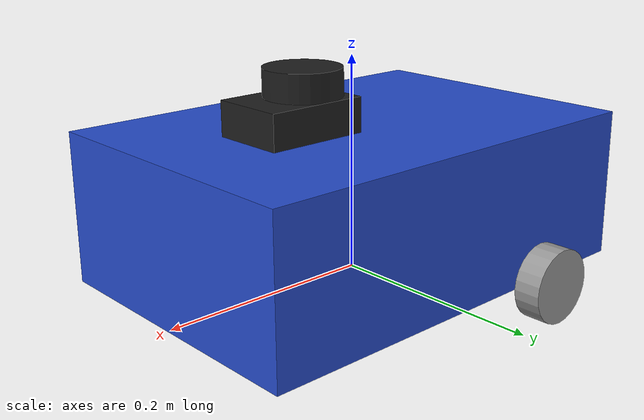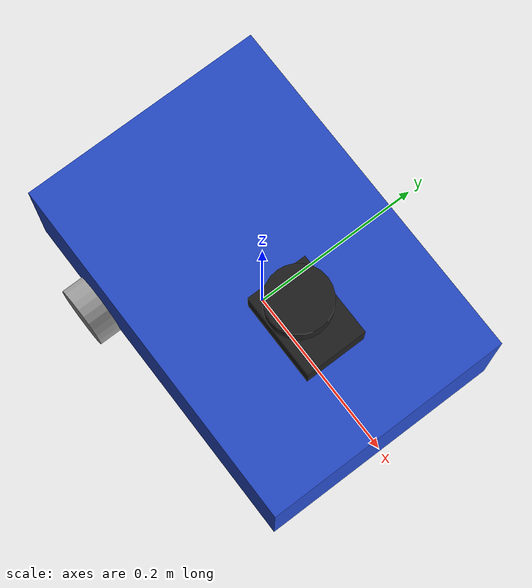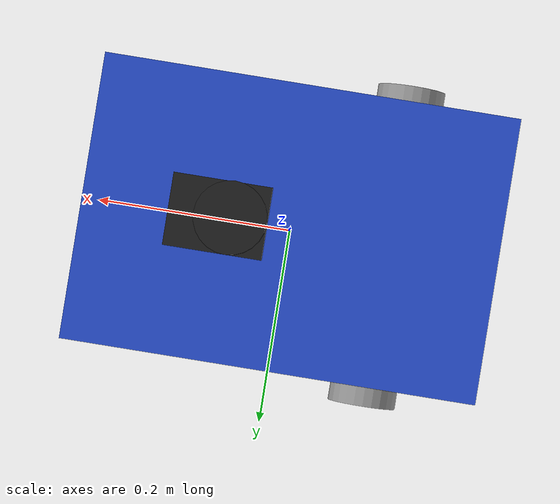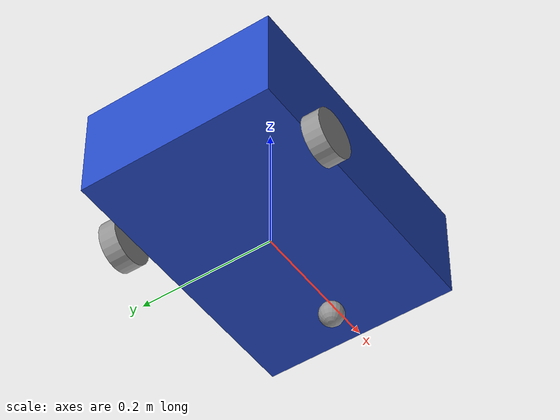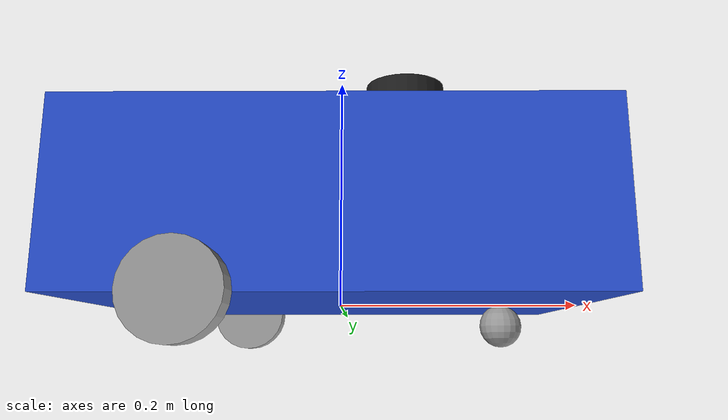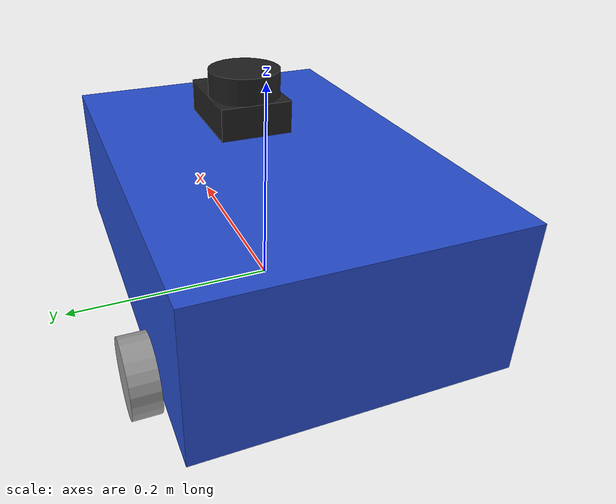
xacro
<?xml version="1.0"?>
<robot name="my_robot" xmlns:xacro="http://www.ros.org/wiki/xacro">
    <xacro:property name="base_length" value="0.4064" />
    <xacro:property name="base_width" value="0.2794" />
    <xacro:property name="base_height" value="0.1397" />
    <xacro:property name="base_mass" value="1.4" />
    <xacro:property name="wheel_radius" value="0.034925" />
    <xacro:property name="wheel_length" value="0.0254" />
    <xacro:property name="wheel_mass" value="0.03" />
    <xacro:property name="lidar_stand_length" value="0.09525" />
    <xacro:property name="lidar_stand_width" value="0.06985" />
    <xacro:property name="lidar_stand_height" value="0.03175" />
    <xacro:property name="lidar_stand_mass" value="0.06" />
    <xacro:property name="lidar_length" value="0.0254" />
    <xacro:property name="lidar_radius" value="0.034925" />
    <xacro:property name="lidar_mass" value="0.12" />
    <xacro:property name="caster_mass" value="0.04" />

    <!--XARCROs FOR ARTICUBOT-->
    <xacro:macro name="lidar_stand_link">
        <link name="lidar_stand_link">
            <visual>
                <geometry>
                    <box size="${lidar_stand_length} ${lidar_stand_width} ${lidar_stand_height}" />
                </geometry>
                <origin xyz="0 0 ${lidar_stand_height/2.0}" rpy="0 0 0" />
                <material name="black" />
            </visual>
            <collision>
                <geometry>
                    <box size="${lidar_stand_length} ${lidar_stand_width} ${lidar_stand_height}" />
                </geometry>
                <origin xyz="0 0 ${lidar_stand_height/2.0}" rpy="0 0 0" />
            </collision>
            <xacro:box_inertia m="${lidar_stand_mass}" l="${lidar_stand_length}" w="${lidar_stand_width}" h="${lidar_stand_height}"
                           xyz="0 0 ${lidar_stand_height / 2.0}" rpy="0 0 0" />
        </link>
    </xacro:macro>

    <xacro:macro name="lidar_link">
        <link name="lidar_link">
            <visual>
                <geometry>
                    <cylinder radius="${lidar_radius}" length="${lidar_length}" />
                </geometry>
                <origin xyz="0 0 ${lidar_length/2.0}" rpy="0 0 0" />
                <material name="black" />
            </visual>
            <collision>
                <geometry>
                    <cylinder radius="${lidar_radius}" length="${lidar_length}" />
                </geometry>
                <origin xyz="0 0 ${lidar_length/2.0}" rpy="0 0 0" />
            </collision>
            <xacro:cylinder_inertia m="${lidar_mass}" r="${lidar_radius}" h="${lidar_length}"
                             xyz="0 0 0" rpy="0 0 0" />
        </link>
    </xacro:macro>

    <xacro:macro name="wheel_link" params="prefix">
        <link name="${prefix}_wheel_link">
            <visual>
                <geometry>
                    <cylinder radius="${wheel_radius}" length="${wheel_length}" />
                </geometry>
                <origin xyz="0 0 0" rpy="${pi / 2.0} 0 0" />
                <material name="grey" />
            </visual>
            <collision>
                <geometry>
                    <cylinder radius="${wheel_radius}" length="${wheel_length}" />
                </geometry>
                <origin xyz="0 0 0" rpy="${pi / 2.0} 0 0" />
            </collision>
            <xacro:cylinder_inertia m="${wheel_mass}" r="${wheel_radius}" h="${wheel_length}"
                             xyz="0 0 0" rpy="${pi / 2.0} 0 0" />
        </link>
    </xacro:macro>

    <xacro:macro name="chassis">
        <link name="chassis">
            <visual>
                <geometry>
                    <box size="${base_length} ${base_width} ${base_height}" />
                </geometry>
                <origin xyz="0 0 ${base_height/2.0}" rpy="0 0 0" />
                <material name="blue" />
            </visual>
            <collision>
                <geometry>
                    <box size="${base_length} ${base_width} ${base_height}" />
                </geometry>
                <origin xyz="0 0 ${base_height/2.0}" rpy="0 0 0" />
            </collision>
            <xacro:box_inertia m="${base_mass}" l="${base_length}" w="${base_width}" h="${base_height}"
                           xyz="0 0 ${base_height / 2.0}" rpy="0 0 0" />
        </link>
    </xacro:macro>

    <xacro:macro name="caster_wheel_link">
        <link name="caster_wheel_link">
            <visual>
                <geometry>
                    <sphere radius="${wheel_radius/2.0}" />
                </geometry>
                <origin xyz="0 0 0" rpy="0 0 0" />
                <material name="grey" />
            </visual>
            <collision>
                <geometry>
                    <sphere radius="${wheel_radius/2.0}" />
                </geometry>
                <origin xyz="0 0 0" rpy="0 0 0" />
            </collision>
            <xacro:sphere_inertia m="${caster_mass}" r="${wheel_radius / 2.0}"
                            xyz="0 0 0" rpy="0 0 0" />
        </link>
    </xacro:macro>

    <!--INSTANCES OF XACROs-->
    <xacro:chassis/>
    <xacro:caster_wheel_link/>
    <xacro:wheel_link prefix="right" />
    <xacro:wheel_link prefix="left" />
    <xacro:lidar_stand_link />
    <xacro:lidar_link />

    <link name="base_link" />
    <link name="base_footprint" />

    <joint name="base_footprint_joint" type="fixed">
        <parent link="base_link"/>
        <child link="base_footprint"/>
        <origin xyz="0 0 0" rpy="0 0 0"/>
    </joint>

    <joint name="chassis_joint" type="fixed">
        <parent link="base_link" />
        <child link="chassis" />
        <origin xyz="0 0 0" rpy="0 0 0"/>
    </joint>

    <joint name="base_right_wheel_joint" type="continuous">
        <parent link="chassis" />
        <child link="right_wheel_link" />
        <origin xyz="${-base_length / 4.0} ${-(base_width + wheel_length) / 2.0} 0" rpy="0 0 0" />
        <axis xyz="0 1 0" />
    </joint>

    <joint name="base_left_wheel_joint" type="continuous">
        <parent link="chassis" />
        <child link="left_wheel_link" />
        <origin xyz="${-base_length / 4.0} ${(base_width + wheel_length) / 2.0} 0" rpy="0 0 0" />
        <axis xyz="0 1 0" />
    </joint>

    <joint name="base_caster_wheel_joint" type="fixed">
        <parent link="chassis" />
        <child link="caster_wheel_link" />
        <origin xyz="${base_length / 3.0} 0 ${-wheel_radius / 2.0}" rpy="0 0 0" />
    </joint>

    <joint name="base_lidar_stand_joint" type="fixed">
        <parent link="chassis" />
        <child link="lidar_stand_link" />
        <origin xyz="${base_height/2.0} 0 ${base_height}" rpy="0 0 0" />
    </joint>

    <joint name="lidar_stand_lidar_joint" type="fixed">
        <parent link="lidar_stand_link" />
        <child link="lidar_link" />
        <origin xyz="${-1.0*((lidar_stand_length/2.0)-lidar_radius)} 0 ${lidar_stand_height}" rpy="0 0 0" />
        <axis xyz="0 0 1" />
    </joint>
</robot>
